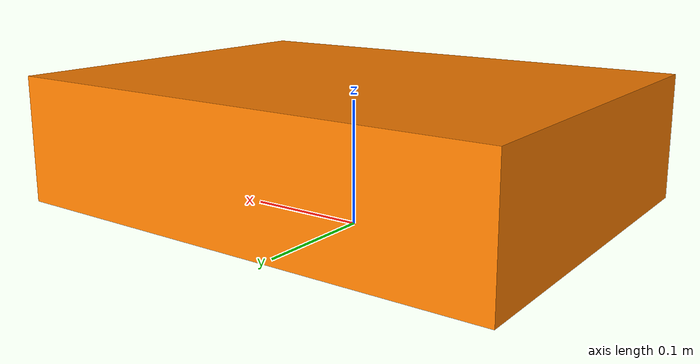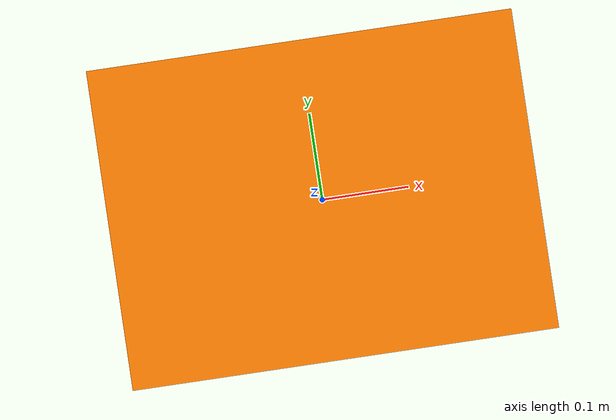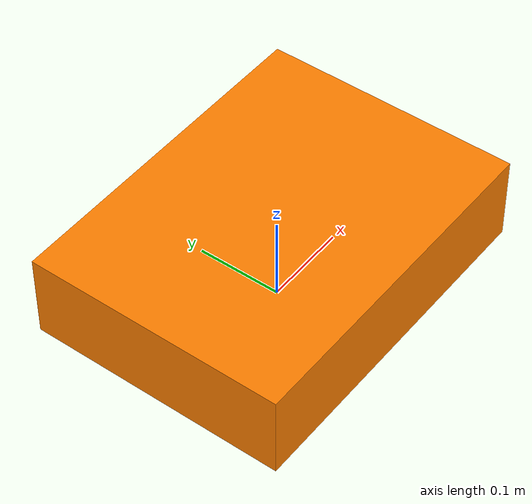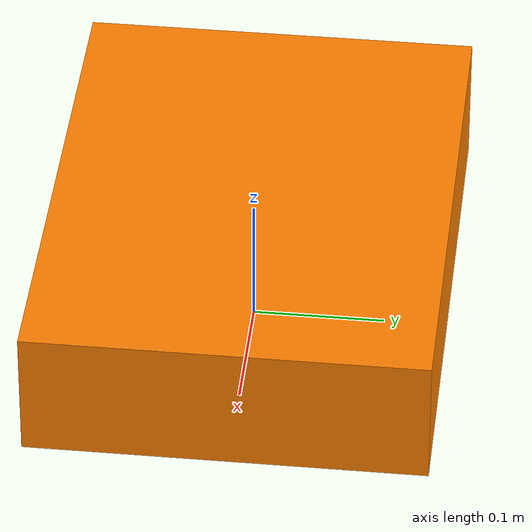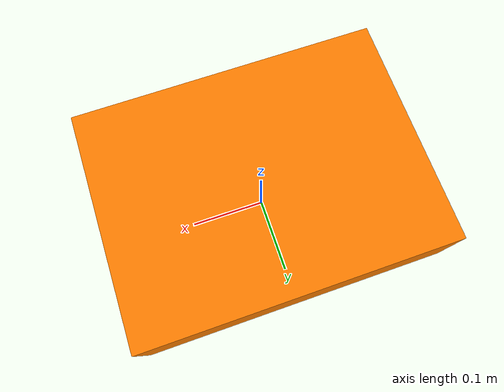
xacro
<?xml version="1.0"?>
<robot name="kesif_robotu" xmlns:xacro="http://www.ros.org/wiki/xacro">

  <!-- ========== ÖLÇÜLER (metre, kilogram) ========== -->
  <xacro:property name="govde_uzunluk"   value="0.40"/>
  <xacro:property name="govde_genislik"  value="0.30"/>
  <xacro:property name="govde_yukseklik" value="0.10"/>
  <xacro:property name="govde_kutle"     value="2.0"/>
  <xacro:property name="teker_yaricap"   value="0.07"/>

  <!-- ========== RENKLER ========== -->
  <material name="turuncu">
    <color rgba="1.0 0.5 0.0 1.0"/>
  </material>

  <!-- ========== BASE_FOOTPRINT: yerdeki referans noktası ========== -->
  <link name="base_footprint"/>

  <!-- Gövdeyi yerden tekerlek yarıçapı kadar yukarı koyuyoruz -->
  <joint name="base_joint" type="fixed">
    <parent link="base_footprint"/>
    <child link="base_link"/>
    <origin xyz="0 0 ${teker_yaricap}" rpy="0 0 0"/>
  </joint>

  <!-- ========== BASE_LINK: gövde ========== -->
  <link name="base_link">
    <visual>
      <geometry>
        <box size="${govde_uzunluk} ${govde_genislik} ${govde_yukseklik}"/>
      </geometry>
      <material name="turuncu"/>
    </visual>

    <collision>
      <geometry>
        <box size="${govde_uzunluk} ${govde_genislik} ${govde_yukseklik}"/>
      </geometry>
    </collision>

    <inertial>
      <mass value="${govde_kutle}"/>
      <!-- Dikdörtgen kutunun eylemsizlik formülü -->
      <inertia
        ixx="${govde_kutle/12 * (govde_genislik**2 + govde_yukseklik**2)}"
        iyy="${govde_kutle/12 * (govde_uzunluk**2 + govde_yukseklik**2)}"
        izz="${govde_kutle/12 * (govde_uzunluk**2 + govde_genislik**2)}"
        ixy="0" ixz="0" iyz="0"/>
    </inertial>
  </link>

</robot>
